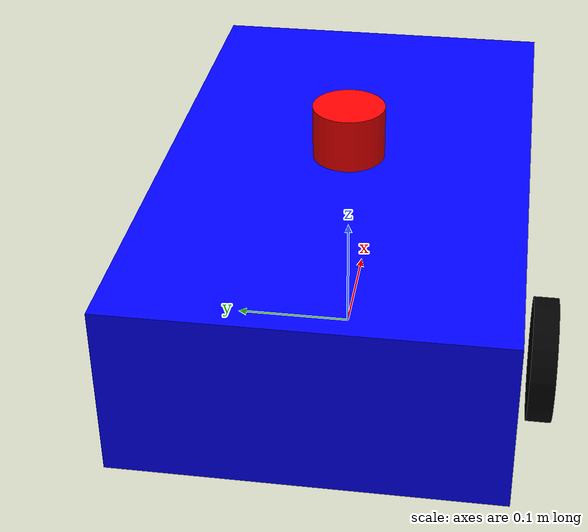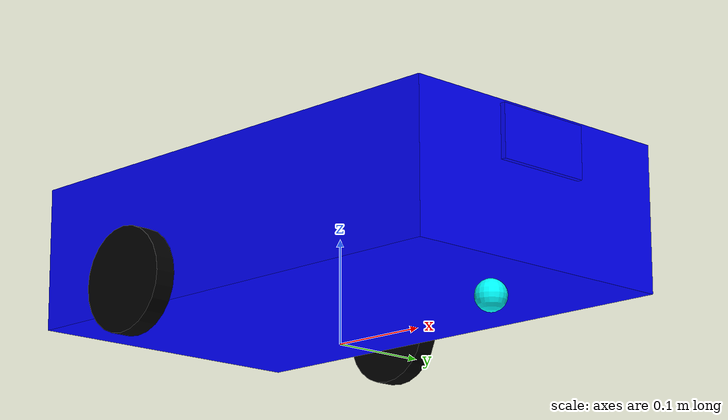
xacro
<?xml version="1.0"?>
<robot name="m_robot" xmlns:xacro="http://ros.org/wiki/xacro">

  <link name="base_footprint"/>

  <link name="base_link">
    <visual>
      <geometry>
        <box size="0.5 0.3 0.14" />
      </geometry>
      <material name="Orange">
        <color rgba="0 0 1 1" />
      </material>
    </visual>
    <collision>
      <geometry>
        <box size="0.5 0.3 0.14" />
      </geometry>
    </collision>
    <inertial>
      <mass value="5.0" />
      <origin xyz="0 0 0.1" />
      <inertia ixx="0.054" iyy="0.116" izz="0.142" ixy="0.0" ixz="0.0" iyz="0.0"/>
    </inertial>
  </link>

  <gazebo reference="base_link">
    <mu1>0.5</mu1>
    <mu2>0.5</mu2>
    <material name="Orange">Gazebo/Orange</material>
  </gazebo>

  <joint name="base_link_joint" type="fixed">
    <parent link="base_footprint"/>
    <child link="base_link"/>
    <origin xyz="0 0 0.1" rpy="0 0 0"/>
  </joint>

  <link name="rear_left_wheel">
    <visual>
      <origin rpy="1.5708 0 0"/>
      <geometry>
        <cylinder radius="0.05" length="0.02" />
      </geometry>
      <material name="Black">
          <color rgba="0 0 0 0" />
      </material>
    </visual>
    <collision>
      <origin rpy="1.5708 0 0"/>
      <geometry>
        <cylinder radius="0.05" length="0.02" />
      </geometry>
    </collision>
    <inertial>
      <mass value="0.1" />
      <inertia ixx="0.01" ixy="0.0" ixz="0.0" iyy="0.01" iyz="0.0" izz="0.01" />
    </inertial>
  </link>

  <gazebo reference="rear_left_wheel">
    <material name="Black">Gazebo/Black</material>
  </gazebo>

  <link name="rear_right_wheel">
    <visual>
      <origin rpy="1.5708 0 0"/>
      <geometry>
        <cylinder radius="0.05" length="0.02" />
      </geometry>
      <material name="Black">
          <color rgba="0 0 0 0" />
      </material>
    </visual>
    <collision>
      <origin rpy="1.5708 0 0"/>
      <geometry>
        <cylinder radius="0.05" length="0.02" />
      </geometry>
    </collision>
    <inertial>
      <mass value="0.1" />
      <inertia ixx="0.01" ixy="0.0" ixz="0.0" iyy="0.01" iyz="0.0" izz="0.01" />
    </inertial>
  </link>

  <gazebo reference="rear_right_wheel">
    <material name="Black">Gazebo/Black</material>
  </gazebo>

  <joint name="rear_left_wheel_joint" type="continuous">
    <parent link="base_link" />
    <child link="rear_left_wheel" />
    <origin xyz="-0.1 -0.17 -0.05"/>
    <axis xyz="0 1 0" />
  </joint>

  <joint name="rear_right_wheel_joint" type="continuous">
    <parent link="base_link" />
    <child link="rear_right_wheel" />
    <origin xyz="-0.1 0.17 -0.05"/>
    <axis xyz="0 1 0" />
  </joint>

  <gazebo reference="rear_left_wheel">
    <mu1>1.0</mu1>
    <mu2>1.0</mu2>
  </gazebo>

  <gazebo reference="rear_right_wheel">
    <mu1>1.0</mu1>
    <mu2>1.0</mu2>
  </gazebo>

  <link name="caster_wheel">
    <visual>
      <geometry><sphere radius="0.015"/></geometry>
      <material name="Black">
          <color rgba="0 1 1 1" />
      </material>
    </visual>
    <collision>
      <geometry><sphere radius="0.015"/></geometry>
      <material name="blue">
        <color rgba="0 1 1 1" />
      </material>
    </collision>
    <inertial>
      <mass value="0.15"/>
      <inertia ixx="0.01" ixy="0" ixz="0" iyy="0.01" iyz="0" izz="0.01"/>
    </inertial>
  </link>

  <gazebo reference="caster_wheel">
    <material name="Black">Gazebo/Black</material>
  </gazebo>

  <joint name="caster_wheel_joint" type="fixed">
    <parent link="base_link"/>
    <child link="caster_wheel"/>
    <origin xyz="0.19 0 -0.085" rpy="0 0 0"/>
  </joint>

  <link name="lidar_link">
    <visual>
      <geometry>
        <cylinder radius="0.03" length="0.05"/>
      </geometry>
      <material name="Red">
        <color rgba="1 0 0 1"/>
      </material>
    </visual>
    <collision>
      <geometry>
        <cylinder radius="0.03" length="0.05"/>
      </geometry>
    </collision>
  </link>

  <joint name="lidar_joint" type="fixed">
    <parent link="base_link"/>
    <child link="lidar_link"/>
    <origin xyz="0 0 0.09" rpy="0 0 0"/>
  </joint>

  <gazebo reference="lidar_link">
    <sensor type="ray" name="lidar_sensor">

      <update_rate>10</update_rate>
      <ray>
        <scan>
          <horizontal>
            <samples>360</samples>
            <resolution>1</resolution>
            <min_angle>-3.14</min_angle>
            <max_angle>3.14</max_angle>
          </horizontal>
        </scan>
        <range>
          <resolution>1</resolution>
          <min>0.1</min>
          <max>8.0</max>
        </range>
        <noise>
          <type>gaussian</type>
          <mean>0.0</mean>
          <stddev>0.01</stddev>
        </noise>
      </ray>
      <always_on>true</always_on>
      <visualize>true</visualize>
      <plugin filename="libgazebo_ros_ray_sensor.so" name="lidar_plugin">
        <ros>
          <namespace>/</namespace>
          <remapping>~/out:=/scan</remapping>
        </ros>
        <output_type>sensor_msgs/LaserScan</output_type>
        <frame_name>lidar_link</frame_name>
      </plugin>

    </sensor>
    <material>Gazebo/Red</material>
  </gazebo>

    <!-- Camera Link -->
  <link name="camera_link">
    <visual>
      <geometry>
        <box size="0.05 0.1 0.05"/>
      </geometry>
      <material name="Blue">
        <color rgba="0 0 1 1"/>
      </material>
    </visual>
    <collision>
      <geometry>
        <box size="0.05 0.1 0.05"/>
      </geometry>
    </collision>
    <inertial>
      <mass value="0.1"/>
      <inertia ixx="0.001" ixy="0.0" ixz="0.0"
              iyy="0.001" iyz="0.0" izz="0.001"/>
    </inertial>
  </link>

  <!-- Camera Joint -->
  <joint name="camera_joint" type="fixed">
    <parent link="base_link"/>
    <child link="camera_link"/>
    <origin xyz="0.23 0 0.041" rpy="0 0 0"/>
  </joint>

  <!-- Optical Frame -->
  <link name="camera_optical_link"/>
  <joint name="camera_optical_joint" type="fixed">
    <parent link="camera_link"/>
    <child link="camera_optical_link"/>
    <origin xyz="0 0 0" rpy="-1.5708 0 -1.5708"/>
  </joint>

  <!-- Gazebo Depth Camera Plugin -->
  <gazebo reference="camera_link">
    <sensor type="depth" name="depth_camera">
      <update_rate>30</update_rate>
      <camera>
        <horizontal_fov>1.047</horizontal_fov>
        <image>
          <width>640</width>
          <height>480</height>
          <format>R8G8B8</format>
        </image>
        <clip>
          <near>0.1</near>
          <far>10.0</far>
        </clip>
      </camera>
      <plugin filename="libgazebo_ros_camera.so" name="camera_plugin">
        <ros>
          <remapping>~/image_raw:=/camera/image_raw</remapping>
          <remapping>~/depth/image_raw:=/camera/depth/image_raw</remapping>
          <remapping>~/points:=/camera/points</remapping>
        </ros>
        <frame_name>camera_optical_link</frame_name>  <!-- ← optical frame! -->
        <min_depth>0.1</min_depth>
        <max_depth>10.0</max_depth>
      </plugin>
    </sensor>
  </gazebo>

  <ros2_control name="GazeboSystem" type="system">
    <hardware>
      <plugin>gazebo_ros2_control/GazeboSystem</plugin>
    </hardware>

    <joint name="rear_left_wheel_joint">
      <command_interface name="velocity">
        <param name="min">-10</param>
        <param name="max">10</param>
      </command_interface>
      <state_interface name="position"/>
      <state_interface name="velocity"/>
    </joint>

    <joint name="rear_right_wheel_joint">
      <command_interface name="velocity">
        <param name="min">-10</param>
        <param name="max">10</param>
      </command_interface>
      <state_interface name="position"/>
      <state_interface name="velocity"/>
    </joint>
  </ros2_control>

  <gazebo>
    <plugin filename="libgazebo_ros2_control.so" name="gazebo_ros2_control">
      <parameters>$(find my_robot_description)/config/controllers.yaml</parameters>
    </plugin>
  </gazebo>

</robot>
